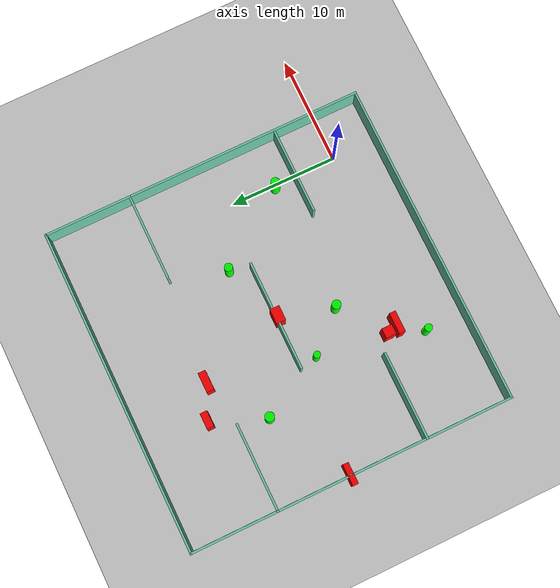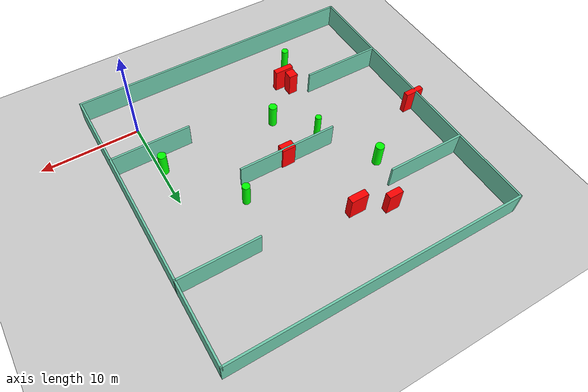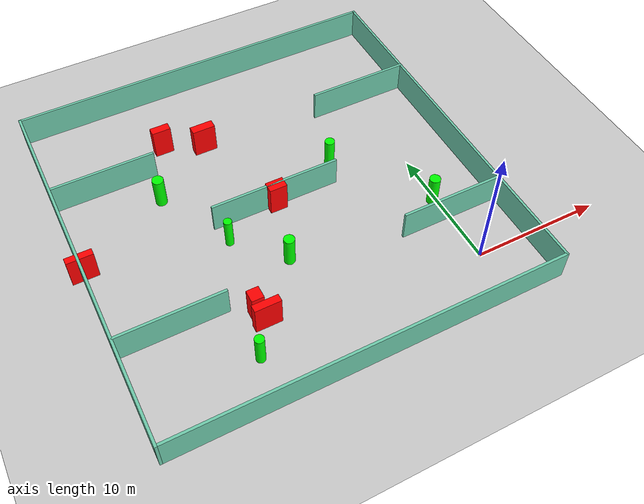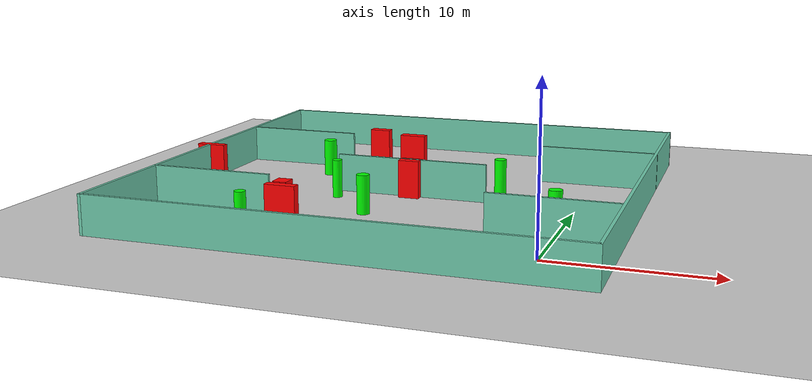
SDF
<sdf version="1.7">
 <world name="default">
  <light name="sun" type="directional">
   <pose>0 0 10 0 -0 0</pose>
   <diffuse>0.8 0.8 0.8 1</diffuse>
   <specular>0.2 0.2 0.2 1</specular>
   <attenuation>
    <range>1000</range>
    <constant>0.9</constant>
    <linear>0.01</linear>
    <quadratic>0.001</quadratic>
   </attenuation>
   <direction>-0.5 0.1 -0.9</direction>
   <spot><inner_angle>0</inner_angle><outer_angle>0</outer_angle><falloff>0</falloff></spot>
  </light>
  <model name="ground_plane">
   <static>1</static>
   <link name="link">
    <collision name="collision">
     <geometry><plane><normal>0 0 1</normal><size>100 100</size></plane></geometry>
     <surface>
      <contact><collide_bitmask>65535</collide_bitmask></contact>
      <friction><ode><mu>100</mu><mu2>50</mu2></ode></friction>
     </surface>
    </collision>
    <visual name="visual">
     <cast_shadows>0</cast_shadows>
     <geometry><plane><normal>0 0 1</normal><size>100 100</size></plane></geometry>
     <material>
      <script><uri>file://media/materials/scripts/gazebo.material</uri><name>Gazebo/Grey</name></script>
     </material>
    </visual>
   </link>
  </model>
  <gravity>0 0 -9.8</gravity>
  <magnetic_field>6e-06 2.3e-05 -4.2e-05</magnetic_field>
  <atmosphere type="adiabatic"/>
  <physics type="ode">
   <max_step_size>0.001</max_step_size>
   <real_time_factor>1</real_time_factor>
   <real_time_update_rate>1000</real_time_update_rate>
  </physics>
  <scene><ambient>0.4 0.4 0.4 1</ambient><background>0.7 0.7 0.7 1</background><shadows>1</shadows></scene>
  <spherical_coordinates>
   <surface_model>EARTH_WGS84</surface_model>
   <latitude_deg>0</latitude_deg>
   <longitude_deg>0</longitude_deg>
   <elevation>0</elevation>
   <heading_deg>0</heading_deg>
  </spherical_coordinates>
  <model name="my_base_walls">
   <link name="Wall_10">
    <collision name="Wall_10_Collision">
     <geometry><box><size>8.2 0.2 2.5</size></box></geometry>
     <pose>0 0 1.25 0 -0 0</pose>
    </collision>
    <visual name="Wall_10_Visual">
     <pose>0 0 1.25 0 -0 0</pose>
     <geometry><box><size>8.2 0.2 2.5</size></box></geometry>
     <material>
      <script><uri>file://media/materials/scripts/gazebo.material</uri><name>Gazebo/Grey</name></script>
      <ambient>0.435294 0.796078 0.67451 1</ambient>
     </material>
     <meta><layer>0</layer></meta>
    </visual>
    <pose>-11 -7 0 0 -0 0</pose>
   </link>
   <link name="Wall_12">
    <collision name="Wall_12_Collision">
     <geometry><box><size>8.2 0.2 2.5</size></box></geometry>
     <pose>0 0 1.25 0 -0 0</pose>
    </collision>
    <visual name="Wall_12_Visual">
     <pose>0 0 1.25 0 -0 0</pose>
     <geometry><box><size>8.2 0.2 2.5</size></box></geometry>
     <material>
      <script><uri>file://media/materials/scripts/gazebo.material</uri><name>Gazebo/Grey</name></script>
      <ambient>0.435294 0.796078 0.67451 1</ambient>
     </material>
     <meta><layer>0</layer></meta>
    </visual>
    <pose>-11 7 0 0 -0 0</pose>
   </link>
   <link name="Wall_14">
    <collision name="Wall_14_Collision">
     <geometry><box><size>8.2 0.2 2.5</size></box></geometry>
     <pose>0 0 1.25 0 -0 0</pose>
    </collision>
    <visual name="Wall_14_Visual">
     <pose>0 0 1.25 0 -0 0</pose>
     <geometry><box><size>8.2 0.2 2.5</size></box></geometry>
     <material>
      <script><uri>file://media/materials/scripts/gazebo.material</uri><name>Gazebo/Grey</name></script>
      <ambient>0.435294 0.796078 0.67451 1</ambient>
     </material>
     <meta><layer>0</layer></meta>
    </visual>
    <pose>11 7 0 0 -0 3.14159</pose>
   </link>
   <link name="Wall_16">
    <collision name="Wall_16_Collision">
     <geometry><box><size>10.2 0.2 2.5</size></box></geometry>
     <pose>0 0 1.25 0 -0 0</pose>
    </collision>
    <visual name="Wall_16_Visual">
     <pose>0 0 1.25 0 -0 0</pose>
     <geometry><box><size>10.2 0.2 2.5</size></box></geometry>
     <material>
      <script><uri>file://media/materials/scripts/gazebo.material</uri><name>Gazebo/Grey</name></script>
      <ambient>0.435294 0.796078 0.67451 1</ambient>
     </material>
     <meta><layer>0</layer></meta>
    </visual>
    <pose>0 0 0 0 -0 3.14159</pose>
   </link>
   <link name="Wall_2">
    <collision name="Wall_2_Collision">
     <geometry><box><size>30.2 0.2 2.5</size></box></geometry>
     <pose>0 0 1.25 0 -0 0</pose>
    </collision>
    <visual name="Wall_2_Visual">
     <pose>0 0 1.25 0 -0 0</pose>
     <geometry><box><size>30.2 0.2 2.5</size></box></geometry>
     <material>
      <script><uri>file://media/materials/scripts/gazebo.material</uri><name>Gazebo/Grey</name></script>
      <ambient>0.435294 0.796078 0.67451 1</ambient>
     </material>
     <meta><layer>0</layer></meta>
    </visual>
    <pose>0 -15 0 0 -0 3.14159</pose>
   </link>
   <link name="Wall_3">
    <collision name="Wall_3_Collision">
     <geometry><box><size>30.2 0.2 2.5</size></box></geometry>
     <pose>0 0 1.25 0 -0 0</pose>
    </collision>
    <visual name="Wall_3_Visual">
     <pose>0 0 1.25 0 -0 0</pose>
     <geometry><box><size>30.2 0.2 2.5</size></box></geometry>
     <material>
      <script><uri>file://media/materials/scripts/gazebo.material</uri><name>Gazebo/Grey</name></script>
      <ambient>0.435294 0.796078 0.67451 1</ambient>
     </material>
     <meta><layer>0</layer></meta>
    </visual>
    <pose>-15 0 0 0 -0 1.5708</pose>
   </link>
   <link name="Wall_4">
    <collision name="Wall_4_Collision">
     <geometry><box><size>30.2 0.2 2.5</size></box></geometry>
     <pose>0 0 1.25 0 -0 0</pose>
    </collision>
    <visual name="Wall_4_Visual">
     <pose>0 0 1.25 0 -0 0</pose>
     <geometry><box><size>30.2 0.2 2.5</size></box></geometry>
     <material>
      <script><uri>file://media/materials/scripts/gazebo.material</uri><name>Gazebo/Grey</name></script>
      <ambient>0.435294 0.796078 0.67451 1</ambient>
     </material>
     <meta><layer>0</layer></meta>
    </visual>
    <pose>0 15 0 0 -0 0</pose>
   </link>
   <link name="Wall_6">
    <collision name="Wall_6_Collision">
     <geometry><box><size>30.2 0.2 2.5</size></box></geometry>
     <pose>0 0 1.25 0 -0 0</pose>
    </collision>
    <visual name="Wall_6_Visual">
     <pose>0 0 1.25 0 -0 0</pose>
     <geometry><box><size>30.2 0.2 2.5</size></box></geometry>
     <material>
      <script><uri>file://media/materials/scripts/gazebo.material</uri><name>Gazebo/Grey</name></script>
      <ambient>0.435294 0.796078 0.67451 1</ambient>
     </material>
     <meta><layer>0</layer></meta>
    </visual>
    <pose>15 0 0 0 -0 1.5708</pose>
   </link>
   <link name="Wall_8">
    <collision name="Wall_8_Collision">
     <geometry><box><size>8.2 0.2 2.5</size></box></geometry>
     <pose>0 0 1.25 0 -0 0</pose>
    </collision>
    <visual name="Wall_8_Visual">
     <pose>0 0 1.25 0 -0 0</pose>
     <geometry><box><size>8.2 0.2 2.5</size></box></geometry>
     <material>
      <script><uri>file://media/materials/scripts/gazebo.material</uri><name>Gazebo/Grey</name></script>
      <ambient>0.435294 0.796078 0.67451 1</ambient>
     </material>
     <meta><layer>0</layer></meta>
    </visual>
    <pose>11 -7 0 0 -0 3.14159</pose>
   </link>
   <static>1</static>
   <pose>-11 11 0 0 -0 0</pose>
  </model>
  <model name="cylinder1">
   <static>1</static>
   <link name="link">
    <inertial>
     <mass>1</mass>
     <inertia><ixx>0.5</ixx><ixy>0</ixy><ixz>0</ixz><iyy>0.5</iyy><iyz>0</iyz><izz>1</izz></inertia>
    </inertial>
    <collision name="collision">
     <geometry><cylinder><radius>0.3137585905650872</radius><length>2.5</length></cylinder></geometry>
    </collision>
    <visual name="visual">
     <geometry><cylinder><radius>0.3137585905650872</radius><length>2.5</length></cylinder></geometry>
     <material>
      <ambient>0 1 0 1</ambient>
      <diffuse>0 1 0 1</diffuse>
      <specular>0.1 0.1 0.1 1</specular>
      <emissive>0 0 0 0</emissive>
     </material>
    </visual>
   </link>
   <pose>-15.57069780763341 9.29641376805934 1.25 0 0 0</pose>
  </model>
  <model name="cylinder2">
   <static>1</static>
   <link name="link">
    <inertial>
     <mass>1</mass>
     <inertia><ixx>0.5</ixx><ixy>0</ixy><ixz>0</ixz><iyy>0.5</iyy><iyz>0</iyz><izz>1</izz></inertia>
    </inertial>
    <collision name="collision">
     <geometry><cylinder><radius>0.4397339476633631</radius><length>2.5</length></cylinder></geometry>
    </collision>
    <visual name="visual">
     <geometry><cylinder><radius>0.4397339476633631</radius><length>2.5</length></cylinder></geometry>
     <material>
      <ambient>0 1 0 1</ambient>
      <diffuse>0 1 0 1</diffuse>
      <specular>0.1 0.1 0.1 1</specular>
      <emissive>0 0 0 0</emissive>
     </material>
    </visual>
   </link>
   <pose>-18.59916153004749 15.23226829257571 1.25 0 0 0</pose>
  </model>
  <model name="cylinder3">
   <static>1</static>
   <link name="link">
    <inertial>
     <mass>1</mass>
     <inertia><ixx>0.5</ixx><ixy>0</ixy><ixz>0</ixz><iyy>0.5</iyy><iyz>0</iyz><izz>1</izz></inertia>
    </inertial>
    <collision name="collision">
     <geometry><cylinder><radius>0.38341330646028116</radius><length>2.5</length></cylinder></geometry>
    </collision>
    <visual name="visual">
     <geometry><cylinder><radius>0.38341330646028116</radius><length>2.5</length></cylinder></geometry>
     <material>
      <ambient>0 1 0 1</ambient>
      <diffuse>0 1 0 1</diffuse>
      <specular>0.1 0.1 0.1 1</specular>
      <emissive>0 0 0 0</emissive>
     </material>
    </visual>
   </link>
   <pose>-5.43872535896616 12.883211336523079 1.25 0 0 0</pose>
  </model>
  <model name="cylinder4">
   <static>1</static>
   <link name="link">
    <inertial>
     <mass>1</mass>
     <inertia><ixx>0.5</ixx><ixy>0</ixy><ixz>0</ixz><iyy>0.5</iyy><iyz>0</iyz><izz>1</izz></inertia>
    </inertial>
    <collision name="collision">
     <geometry><cylinder><radius>0.4237064923448701</radius><length>2.5</length></cylinder></geometry>
    </collision>
    <visual name="visual">
     <geometry><cylinder><radius>0.4237064923448701</radius><length>2.5</length></cylinder></geometry>
     <material>
      <ambient>0 1 0 1</ambient>
      <diffuse>0 1 0 1</diffuse>
      <specular>0.1 0.1 0.1 1</specular>
      <emissive>0 0 0 0</emissive>
     </material>
    </visual>
   </link>
   <pose>-0.3184081192533128 5.936464013411047 1.25 0 0 0</pose>
  </model>
  <model name="cylinder5">
   <static>1</static>
   <link name="link">
    <inertial>
     <mass>1</mass>
     <inertia><ixx>0.5</ixx><ixy>0</ixy><ixz>0</ixz><iyy>0.5</iyy><iyz>0</iyz><izz>1</izz></inertia>
    </inertial>
    <collision name="collision">
     <geometry><cylinder><radius>0.4126448736462594</radius><length>2.5</length></cylinder></geometry>
    </collision>
    <visual name="visual">
     <geometry><cylinder><radius>0.4126448736462594</radius><length>2.5</length></cylinder></geometry>
     <material>
      <ambient>0 1 0 1</ambient>
      <diffuse>0 1 0 1</diffuse>
      <specular>0.1 0.1 0.1 1</specular>
      <emissive>0 0 0 0</emissive>
     </material>
    </visual>
   </link>
   <pose>-12.397447994707248 5.888610658726153 1.25 0 0 0</pose>
  </model>
  <model name="cylinder6">
   <static>1</static>
   <link name="link">
    <inertial>
     <mass>1</mass>
     <inertia><ixx>0.5</ixx><ixy>0</ixy><ixz>0</ixz><iyy>0.5</iyy><iyz>0</iyz><izz>1</izz></inertia>
    </inertial>
    <collision name="collision">
     <geometry><cylinder><radius>0.3500860174960111</radius><length>2.5</length></cylinder></geometry>
    </collision>
    <visual name="visual">
     <geometry><cylinder><radius>0.3500860174960111</radius><length>2.5</length></cylinder></geometry>
     <material>
      <ambient>0 1 0 1</ambient>
      <diffuse>0 1 0 1</diffuse>
      <specular>0.1 0.1 0.1 1</specular>
      <emissive>0 0 0 0</emissive>
     </material>
    </visual>
   </link>
   <pose>-17.618167109376465 -0.35611868179929207 1.25 0 0 0</pose>
  </model>
  <model name="box1">
   <static>1</static>
   <link name="link">
    <inertial>
     <mass>1</mass>
     <inertia><ixx>0.083</ixx><ixy>0</ixy><ixz>0</ixz><iyy>0.083</iyy><iyz>0</iyz><izz>0.083</izz></inertia>
    </inertial>
    <collision name="collision">
     <geometry><box><size>1.9900701603301219 0.5742081101402856 2.5</size></box></geometry>
    </collision>
    <visual name="visual">
     <geometry><box><size>1.9900701603301219 0.5742081101402856 2.5</size></box></geometry>
     <material>
      <ambient>1 0 0 1</ambient>
      <diffuse>1 0 0 1</diffuse>
      <specular>0.1 0.1 0.1 1</specular>
      <emissive>0 0 0 0</emissive>
     </material>
    </visual>
    <sensor name="my_contact" type="contact">
     <contact><collision>box_collision</collision><topic>__default_topic__</topic></contact>
    </sensor>
   </link>
   <pose>-16.056306092398184 1.857943293679849 1.25 0 0 0</pose>
  </model>
  <model name="box2">
   <static>1</static>
   <link name="link">
    <inertial>
     <mass>1</mass>
     <inertia><ixx>0.083</ixx><ixy>0</ixy><ixz>0</ixz><iyy>0.083</iyy><iyz>0</iyz><izz>0.083</izz></inertia>
    </inertial>
    <collision name="collision">
     <geometry><box><size>1.3739093064224248 0.8832716532130023 2.5</size></box></geometry>
    </collision>
    <visual name="visual">
     <geometry><box><size>1.3739093064224248 0.8832716532130023 2.5</size></box></geometry>
     <material>
      <ambient>1 0 0 1</ambient>
      <diffuse>1 0 0 1</diffuse>
      <specular>0.1 0.1 0.1 1</specular>
      <emissive>0 0 0 0</emissive>
     </material>
    </visual>
    <sensor name="my_contact" type="contact">
     <contact><collision>box_collision</collision><topic>__default_topic__</topic></contact>
    </sensor>
   </link>
   <pose>-11.011861934162509 10.825991739573237 1.25 0 0 0</pose>
  </model>
  <model name="box3">
   <static>1</static>
   <link name="link">
    <inertial>
     <mass>1</mass>
     <inertia><ixx>0.083</ixx><ixy>0</ixy><ixz>0</ixz><iyy>0.083</iyy><iyz>0</iyz><izz>0.083</izz></inertia>
    </inertial>
    <collision name="collision">
     <geometry><box><size>1.8044510465704793 0.6938063703656364 2.5</size></box></geometry>
    </collision>
    <visual name="visual">
     <geometry><box><size>1.8044510465704793 0.6938063703656364 2.5</size></box></geometry>
     <material>
      <ambient>1 0 0 1</ambient>
      <diffuse>1 0 0 1</diffuse>
      <specular>0.1 0.1 0.1 1</specular>
      <emissive>0 0 0 0</emissive>
     </material>
    </visual>
    <sensor name="my_contact" type="contact">
     <contact><collision>box_collision</collision><topic>__default_topic__</topic></contact>
    </sensor>
   </link>
   <pose>-13.541795686669895 18.81640875617294 1.25 0 0 0</pose>
  </model>
  <model name="box4">
   <static>1</static>
   <link name="link">
    <inertial>
     <mass>1</mass>
     <inertia><ixx>0.083</ixx><ixy>0</ixy><ixz>0</ixz><iyy>0.083</iyy><iyz>0</iyz><izz>0.083</izz></inertia>
    </inertial>
    <collision name="collision">
     <geometry><box><size>0.9222044688354307 0.9604924068114448 2.5</size></box></geometry>
    </collision>
    <visual name="visual">
     <geometry><box><size>0.9222044688354307 0.9604924068114448 2.5</size></box></geometry>
     <material>
      <ambient>1 0 0 1</ambient>
      <diffuse>1 0 0 1</diffuse>
      <specular>0.1 0.1 0.1 1</specular>
      <emissive>0 0 0 0</emissive>
     </material>
    </visual>
    <sensor name="my_contact" type="contact">
     <contact><collision>box_collision</collision><topic>__default_topic__</topic></contact>
    </sensor>
   </link>
   <pose>-16.42921699852676 2.852757830612216 1.25 0 0 0</pose>
  </model>
  <model name="box5">
   <static>1</static>
   <link name="link">
    <inertial>
     <mass>1</mass>
     <inertia><ixx>0.083</ixx><ixy>0</ixy><ixz>0</ixz><iyy>0.083</iyy><iyz>0</iyz><izz>0.083</izz></inertia>
    </inertial>
    <collision name="collision">
     <geometry><box><size>1.9840596354149262 0.5266646177979544 2.5</size></box></geometry>
    </collision>
    <visual name="visual">
     <geometry><box><size>1.9840596354149262 0.5266646177979544 2.5</size></box></geometry>
     <material>
      <ambient>1 0 0 1</ambient>
      <diffuse>1 0 0 1</diffuse>
      <specular>0.1 0.1 0.1 1</specular>
      <emissive>0 0 0 0</emissive>
     </material>
    </visual>
    <sensor name="my_contact" type="contact">
     <contact><collision>box_collision</collision><topic>__default_topic__</topic></contact>
    </sensor>
   </link>
   <pose>-25.86786758469294 11.17342742074717 1.25 0 0 0</pose>
  </model>
  <model name="box6">
   <static>1</static>
   <link name="link">
    <inertial>
     <mass>1</mass>
     <inertia><ixx>0.083</ixx><ixy>0</ixy><ixz>0</ixz><iyy>0.083</iyy><iyz>0</iyz><izz>0.083</izz></inertia>
    </inertial>
    <collision name="collision">
     <geometry><box><size>1.4743875261633494 0.6565345211018 2.5</size></box></geometry>
    </collision>
    <visual name="visual">
     <geometry><box><size>1.4743875261633494 0.6565345211018 2.5</size></box></geometry>
     <material>
      <ambient>1 0 0 1</ambient>
      <diffuse>1 0 0 1</diffuse>
      <specular>0.1 0.1 0.1 1</specular>
      <emissive>0 0 0 0</emissive>
     </material>
    </visual>
    <sensor name="my_contact" type="contact">
     <contact><collision>box_collision</collision><topic>__default_topic__</topic></contact>
    </sensor>
   </link>
   <pose>-16.551490064778115 20.123906221625127 1.25 0 0 0</pose>
  </model>
 </world>
</sdf>
